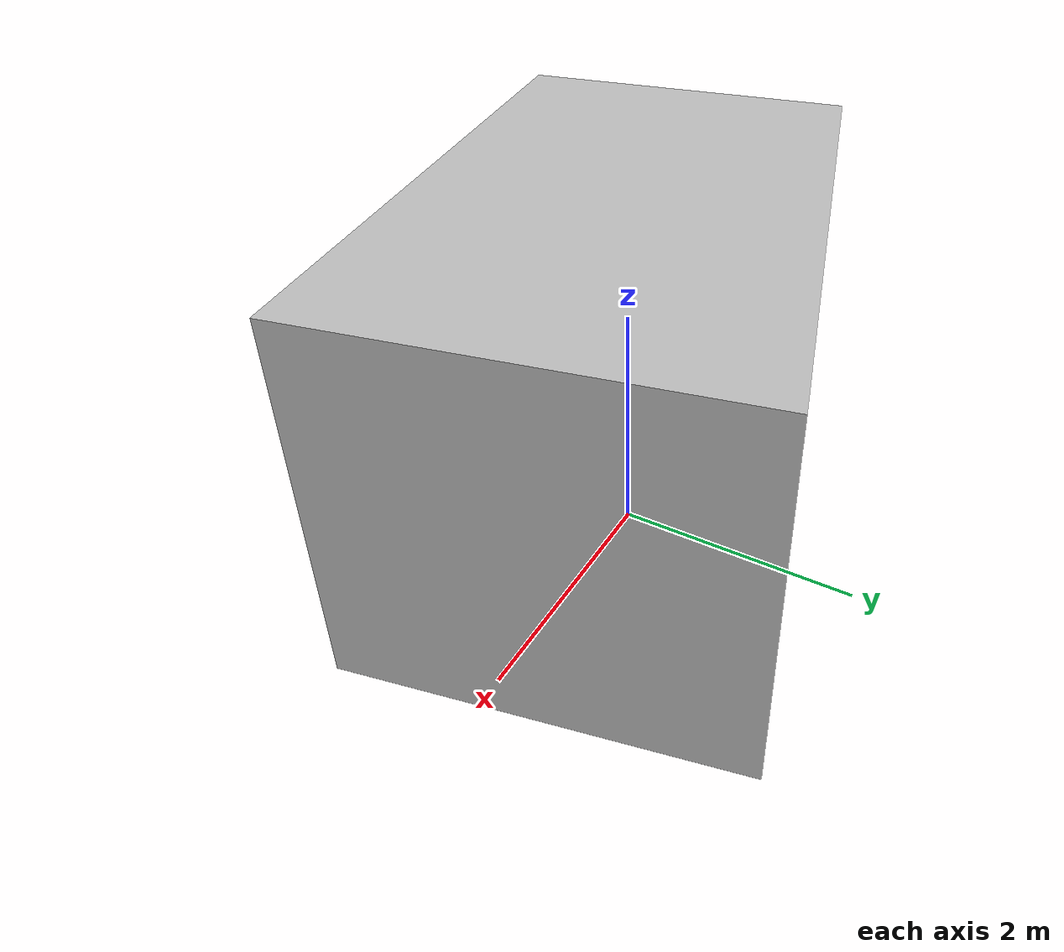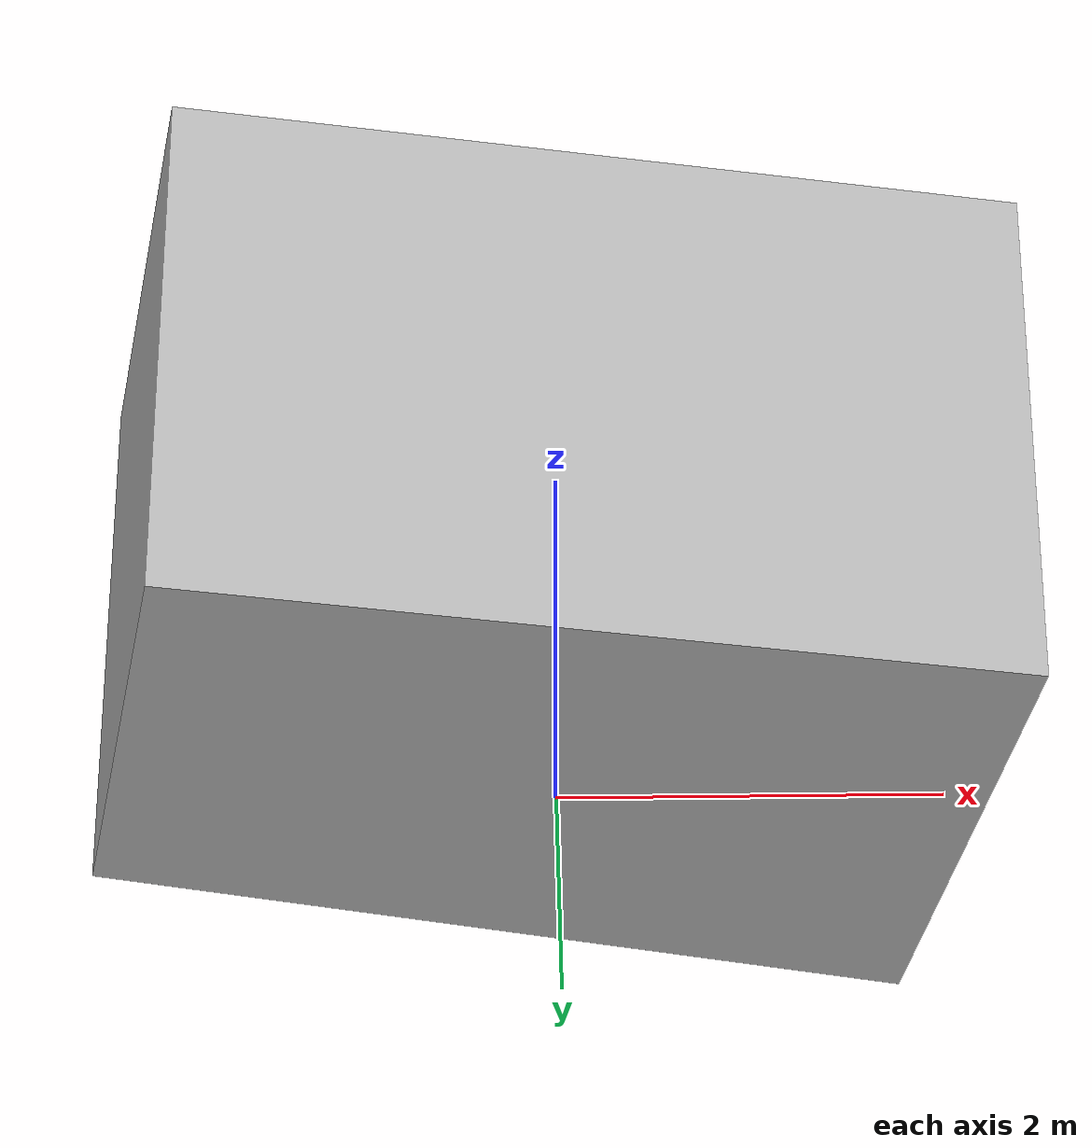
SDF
<?xml version="1.0" ?>
<sdf version="1.7">
  <model name="building_4776_actual_a_casa">
    <static>true</static>
    <link name="building_link">
      <visual name="building_visual">
        <geometry>
          <mesh>
            <uri>model://building_4776_actual_a_casa/meshes/construction_4776_actual_A_Casa_h3m.obj</uri>
          </mesh>
        </geometry>
      </visual>
    <collision name="building_collision">
      <geometry>
        <mesh>
          <uri>model://building_4776_actual_a_casa/meshes/construction_4776_actual_A_Casa_h3m.obj</uri>
        </mesh>
      </geometry>
    </collision>
    </link>
  </model>
</sdf>
